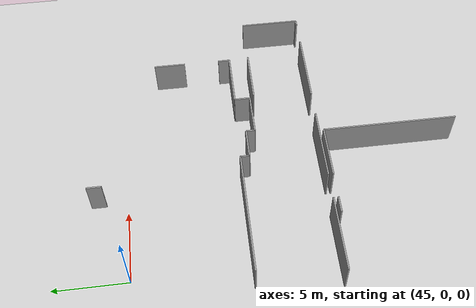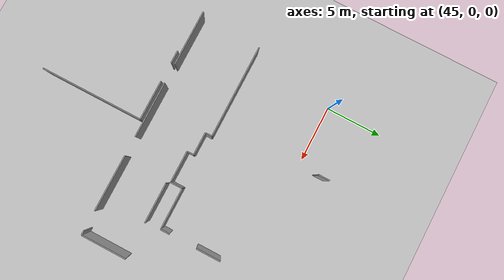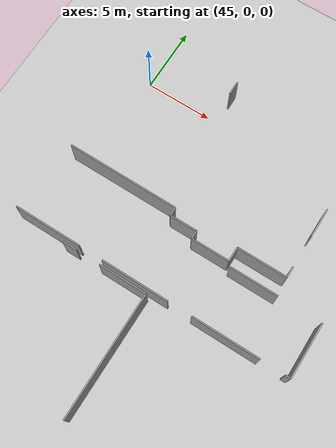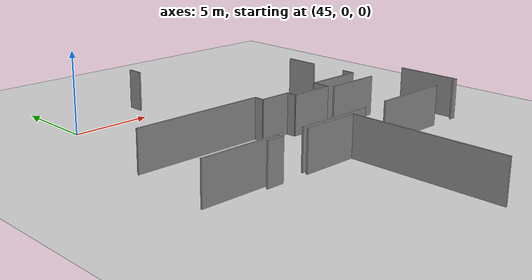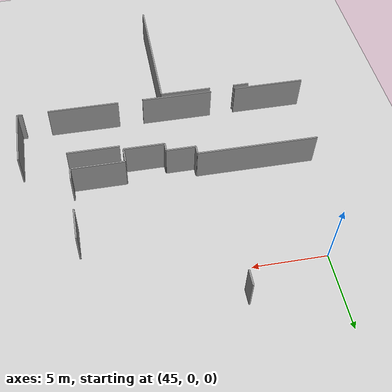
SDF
<sdf version="1.6">
 <world name="default">
  <model name="ground_plane">
   <static>1</static>
   <link name="link">
    <collision name="collision">
     <geometry><plane><normal>0 0 1</normal><size>100 100</size></plane></geometry>
     <surface><friction><ode><mu>100</mu><mu2>50</mu2></ode></friction></surface>
    </collision>
    <visual name="visual">
     <cast_shadows>0</cast_shadows>
     <geometry><plane><normal>0 0 1</normal><size>100 100</size></plane></geometry>
     <material>
      <script><uri>file://media/materials/scripts/gazebo.material</uri><name>Gazebo/Grey</name></script>
     </material>
    </visual>
   </link>
  </model>
  <model name="0510032192_A_40_1_203">
   <static>1</static>
   <link name="Wall_147">
    <collision name="Wall_147_Collision">
     <geometry><box><size>1.11586291916 0.1 2.5</size></box></geometry>
     <pose>0.557931459582 0 1.25 0 0 0</pose>
    </collision>
    <visual name="Wall_147_Visual">
     <pose>0.557931459582 0 1.25 0 0 0</pose>
     <geometry><box><size>1.11586291916 0.1 2.5</size></box></geometry>
     <material>
      <script><uri>file://media/materials/scripts/gazebo.material</uri><name>Gazebo/Grey</name></script>
      <ambient>1 1 1 1</ambient>
     </material>
    </visual>
    <pose>111.608405828 -36.9875132652 0 0 0 0.0</pose>
   </link>
   <link name="Wall_148">
    <collision name="Wall_148_Collision">
     <geometry><box><size>3.60177165479 0.1 2.5</size></box></geometry>
     <pose>1.8008858274 0 1.25 0 0 0</pose>
    </collision>
    <visual name="Wall_148_Visual">
     <pose>1.8008858274 0 1.25 0 0 0</pose>
     <geometry><box><size>3.60177165479 0.1 2.5</size></box></geometry>
     <material>
      <script><uri>file://media/materials/scripts/gazebo.material</uri><name>Gazebo/Grey</name></script>
      <ambient>1 1 1 1</ambient>
     </material>
    </visual>
    <pose>114.494779719 -36.9875132652 0 0 0 0.0</pose>
   </link>
   <link name="Wall_149">
    <collision name="Wall_149_Collision">
     <geometry><box><size>9.17892569598 0.1 2.5</size></box></geometry>
     <pose>4.58946284799 0 1.25 0 0 0</pose>
    </collision>
    <visual name="Wall_149_Visual">
     <pose>4.58946284799 0 1.25 0 0 0</pose>
     <geometry><box><size>9.17892569598 0.1 2.5</size></box></geometry>
     <material>
      <script><uri>file://media/materials/scripts/gazebo.material</uri><name>Gazebo/Grey</name></script>
      <ambient>1 1 1 1</ambient>
     </material>
    </visual>
    <pose>118.096551374 -36.9875132652 0 0 0 -1.57079632679</pose>
   </link>
   <link name="Wall_231">
    <collision name="Wall_231_Collision">
     <geometry><box><size>3.60812622723 0.1 2.5</size></box></geometry>
     <pose>1.80406311361 0 1.25 0 0 0</pose>
    </collision>
    <visual name="Wall_231_Visual">
     <pose>1.80406311361 0 1.25 0 0 0</pose>
     <geometry><box><size>3.60812622723 0.1 2.5</size></box></geometry>
     <material>
      <script><uri>file://media/materials/scripts/gazebo.material</uri><name>Gazebo/Grey</name></script>
      <ambient>1 1 1 1</ambient>
     </material>
    </visual>
    <pose>121.666550166 -32.6294203994 0 0 0 0.0</pose>
   </link>
   <link name="Wall_232">
    <collision name="Wall_232_Collision">
     <geometry><box><size>4.0348993118 0.1 2.5</size></box></geometry>
     <pose>2.0174496559 0 1.25 0 0 0</pose>
    </collision>
    <visual name="Wall_232_Visual">
     <pose>2.0174496559 0 1.25 0 0 0</pose>
     <geometry><box><size>4.0348993118 0.1 2.5</size></box></geometry>
     <material>
      <script><uri>file://media/materials/scripts/gazebo.material</uri><name>Gazebo/Grey</name></script>
      <ambient>1 1 1 1</ambient>
     </material>
    </visual>
    <pose>128.483735472 -32.6294203994 0 0 0 -1.57079632679</pose>
   </link>
   <link name="Wall_233">
    <collision name="Wall_233_Collision">
     <geometry><box><size>0.388899832875 0.1 2.5</size></box></geometry>
     <pose>0.194449916437 0 1.25 0 0 0</pose>
    </collision>
    <visual name="Wall_233_Visual">
     <pose>0.194449916437 0 1.25 0 0 0</pose>
     <geometry><box><size>0.388899832875 0.1 2.5</size></box></geometry>
     <material>
      <script><uri>file://media/materials/scripts/gazebo.material</uri><name>Gazebo/Grey</name></script>
      <ambient>1 1 1 1</ambient>
     </material>
    </visual>
    <pose>128.483735472 -36.6643197112 0 0 0 3.14159265359</pose>
   </link>
   <link name="Wall_234">
    <collision name="Wall_234_Collision">
     <geometry><box><size>5.02265405072 0.1 2.5</size></box></geometry>
     <pose>2.51132702536 0 1.25 0 0 0</pose>
    </collision>
    <visual name="Wall_234_Visual">
     <pose>2.51132702536 0 1.25 0 0 0</pose>
     <geometry><box><size>5.02265405072 0.1 2.5</size></box></geometry>
     <material>
      <script><uri>file://media/materials/scripts/gazebo.material</uri><name>Gazebo/Grey</name></script>
      <ambient>1 1 1 1</ambient>
     </material>
    </visual>
    <pose>126.311742614 -36.6643197112 0 0 0 3.14159265359</pose>
   </link>
   <link name="Wall_235">
    <collision name="Wall_235_Collision">
     <geometry><box><size>5.03917593905 0.1 2.5</size></box></geometry>
     <pose>2.51958796952 0 1.25 0 0 0</pose>
    </collision>
    <visual name="Wall_235_Visual">
     <pose>2.51958796952 0 1.25 0 0 0</pose>
     <geometry><box><size>5.03917593905 0.1 2.5</size></box></geometry>
     <material>
      <script><uri>file://media/materials/scripts/gazebo.material</uri><name>Gazebo/Grey</name></script>
      <ambient>1 1 1 1</ambient>
     </material>
    </visual>
    <pose>119.522517427 -36.6643197112 0 0 0 3.14159265359</pose>
   </link>
   <link name="Wall_236">
    <collision name="Wall_236_Collision">
     <geometry><box><size>5.05582491882 0.1 2.5</size></box></geometry>
     <pose>2.52791245941 0 1.25 0 0 0</pose>
    </collision>
    <visual name="Wall_236_Visual">
     <pose>2.52791245941 0 1.25 0 0 0</pose>
     <geometry><box><size>5.05582491882 0.1 2.5</size></box></geometry>
     <material>
      <script><uri>file://media/materials/scripts/gazebo.material</uri><name>Gazebo/Grey</name></script>
      <ambient>1 1 1 1</ambient>
     </material>
    </visual>
    <pose>112.702409018 -36.6643197112 0 0 0 3.14159265359</pose>
   </link>
   <link name="Wall_381">
    <collision name="Wall_381_Collision">
     <geometry><box><size>1.00948737664 0.1 2.5</size></box></geometry>
     <pose>0.504743688321 0 1.25 0 0 0</pose>
    </collision>
    <visual name="Wall_381_Visual">
     <pose>0.504743688321 0 1.25 0 0 0</pose>
     <geometry><box><size>1.00948737664 0.1 2.5</size></box></geometry>
     <material>
      <script><uri>file://media/materials/scripts/gazebo.material</uri><name>Gazebo/Grey</name></script>
      <ambient>1 1 1 1</ambient>
     </material>
    </visual>
    <pose>115.323415964 -21.9862741235 0 0 0 1.57079632679</pose>
   </link>
   <link name="Wall_385">
    <collision name="Wall_385_Collision">
     <geometry><box><size>2.1634777304 0.1 2.5</size></box></geometry>
     <pose>1.0817388652 0 1.25 0 0 0</pose>
    </collision>
    <visual name="Wall_385_Visual">
     <pose>1.0817388652 0 1.25 0 0 0</pose>
     <geometry><box><size>2.1634777304 0.1 2.5</size></box></geometry>
     <material>
      <script><uri>file://media/materials/scripts/gazebo.material</uri><name>Gazebo/Grey</name></script>
      <ambient>1 1 1 1</ambient>
     </material>
    </visual>
    <pose>125.1348758 -25.8518876257 0 0 0 -1.57079632679</pose>
   </link>
   <link name="Wall_386">
    <collision name="Wall_386_Collision">
     <geometry><box><size>0.806649424593 0.1 2.5</size></box></geometry>
     <pose>0.403324712297 0 1.25 0 0 0</pose>
    </collision>
    <visual name="Wall_386_Visual">
     <pose>0.403324712297 0 1.25 0 0 0</pose>
     <geometry><box><size>0.806649424593 0.1 2.5</size></box></geometry>
     <material>
      <script><uri>file://media/materials/scripts/gazebo.material</uri><name>Gazebo/Grey</name></script>
      <ambient>1 1 1 1</ambient>
     </material>
    </visual>
    <pose>125.1348758 -30.4578088163 0 0 0 -1.57079632679</pose>
   </link>
   <link name="Wall_387">
    <collision name="Wall_387_Collision">
     <geometry><box><size>3.69073566885 0.1 2.5</size></box></geometry>
     <pose>1.84536783443 0 1.25 0 0 0</pose>
    </collision>
    <visual name="Wall_387_Visual">
     <pose>1.84536783443 0 1.25 0 0 0</pose>
     <geometry><box><size>3.69073566885 0.1 2.5</size></box></geometry>
     <material>
      <script><uri>file://media/materials/scripts/gazebo.material</uri><name>Gazebo/Grey</name></script>
      <ambient>1 1 1 1</ambient>
     </material>
    </visual>
    <pose>125.1348758 -31.2644582409 0 0 0 3.14159265359</pose>
   </link>
   <link name="Wall_388">
    <collision name="Wall_388_Collision">
     <geometry><box><size>1.07201636938 0.1 2.5</size></box></geometry>
     <pose>0.536008184689 0 1.25 0 0 0</pose>
    </collision>
    <visual name="Wall_388_Visual">
     <pose>0.536008184689 0 1.25 0 0 0</pose>
     <geometry><box><size>1.07201636938 0.1 2.5</size></box></geometry>
     <material>
      <script><uri>file://media/materials/scripts/gazebo.material</uri><name>Gazebo/Grey</name></script>
      <ambient>1 1 1 1</ambient>
     </material>
    </visual>
    <pose>121.444140131 -31.2644582409 0 0 0 -1.57079632679</pose>
   </link>
   <link name="Wall_389">
    <collision name="Wall_389_Collision">
     <geometry><box><size>2.82524290353 0.1 2.5</size></box></geometry>
     <pose>1.41262145177 0 1.25 0 0 0</pose>
    </collision>
    <visual name="Wall_389_Visual">
     <pose>1.41262145177 0 1.25 0 0 0</pose>
     <geometry><box><size>2.82524290353 0.1 2.5</size></box></geometry>
     <material>
      <script><uri>file://media/materials/scripts/gazebo.material</uri><name>Gazebo/Grey</name></script>
      <ambient>1 1 1 1</ambient>
     </material>
    </visual>
    <pose>121.444140131 -32.3364746103 0 0 0 3.14159265359</pose>
   </link>
   <link name="Wall_390">
    <collision name="Wall_390_Collision">
     <geometry><box><size>0.600634186329 0.1 2.5</size></box></geometry>
     <pose>0.300317093164 0 1.25 0 0 0</pose>
    </collision>
    <visual name="Wall_390_Visual">
     <pose>0.300317093164 0 1.25 0 0 0</pose>
     <geometry><box><size>0.600634186329 0.1 2.5</size></box></geometry>
     <material>
      <script><uri>file://media/materials/scripts/gazebo.material</uri><name>Gazebo/Grey</name></script>
      <ambient>1 1 1 1</ambient>
     </material>
    </visual>
    <pose>118.618897228 -32.3364746103 0 0 0 1.57079632679</pose>
   </link>
   <link name="Wall_391">
    <collision name="Wall_391_Collision">
     <geometry><box><size>2.03854683638 0.1 2.5</size></box></geometry>
     <pose>1.01927341819 0 1.25 0 0 0</pose>
    </collision>
    <visual name="Wall_391_Visual">
     <pose>1.01927341819 0 1.25 0 0 0</pose>
     <geometry><box><size>2.03854683638 0.1 2.5</size></box></geometry>
     <material>
      <script><uri>file://media/materials/scripts/gazebo.material</uri><name>Gazebo/Grey</name></script>
      <ambient>1 1 1 1</ambient>
     </material>
    </visual>
    <pose>118.618897228 -31.735840424 0 0 0 3.14159265359</pose>
   </link>
   <link name="Wall_392">
    <collision name="Wall_392_Collision">
     <geometry><box><size>0.610547319324 0.1 2.5</size></box></geometry>
     <pose>0.305273659662 0 1.25 0 0 0</pose>
    </collision>
    <visual name="Wall_392_Visual">
     <pose>0.305273659662 0 1.25 0 0 0</pose>
     <geometry><box><size>0.610547319324 0.1 2.5</size></box></geometry>
     <material>
      <script><uri>file://media/materials/scripts/gazebo.material</uri><name>Gazebo/Grey</name></script>
      <ambient>1 1 1 1</ambient>
     </material>
    </visual>
    <pose>116.580350391 -31.735840424 0 0 0 1.57079632679</pose>
   </link>
   <link name="Wall_393">
    <collision name="Wall_393_Collision">
     <geometry><box><size>8.37469702741 0.1 2.5</size></box></geometry>
     <pose>4.18734851371 0 1.25 0 0 0</pose>
    </collision>
    <visual name="Wall_393_Visual">
     <pose>4.18734851371 0 1.25 0 0 0</pose>
     <geometry><box><size>8.37469702741 0.1 2.5</size></box></geometry>
     <material>
      <script><uri>file://media/materials/scripts/gazebo.material</uri><name>Gazebo/Grey</name></script>
      <ambient>1 1 1 1</ambient>
     </material>
    </visual>
    <pose>116.580350391 -31.1252931047 0 0 0 3.14039377716</pose>
   </link>
   <pose>-64.55 23.3936883209 0 0 0 0</pose>
  </model>
 </world>
</sdf>
